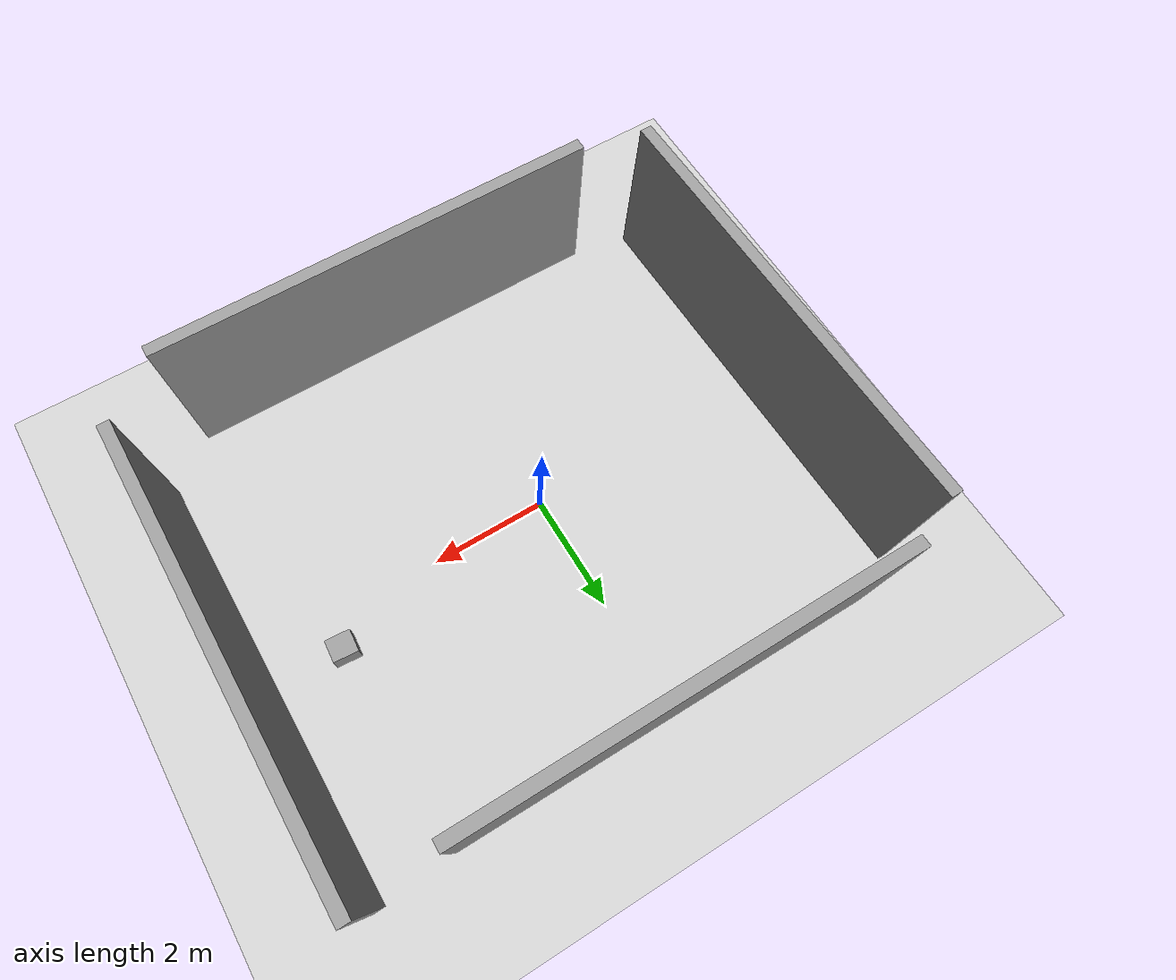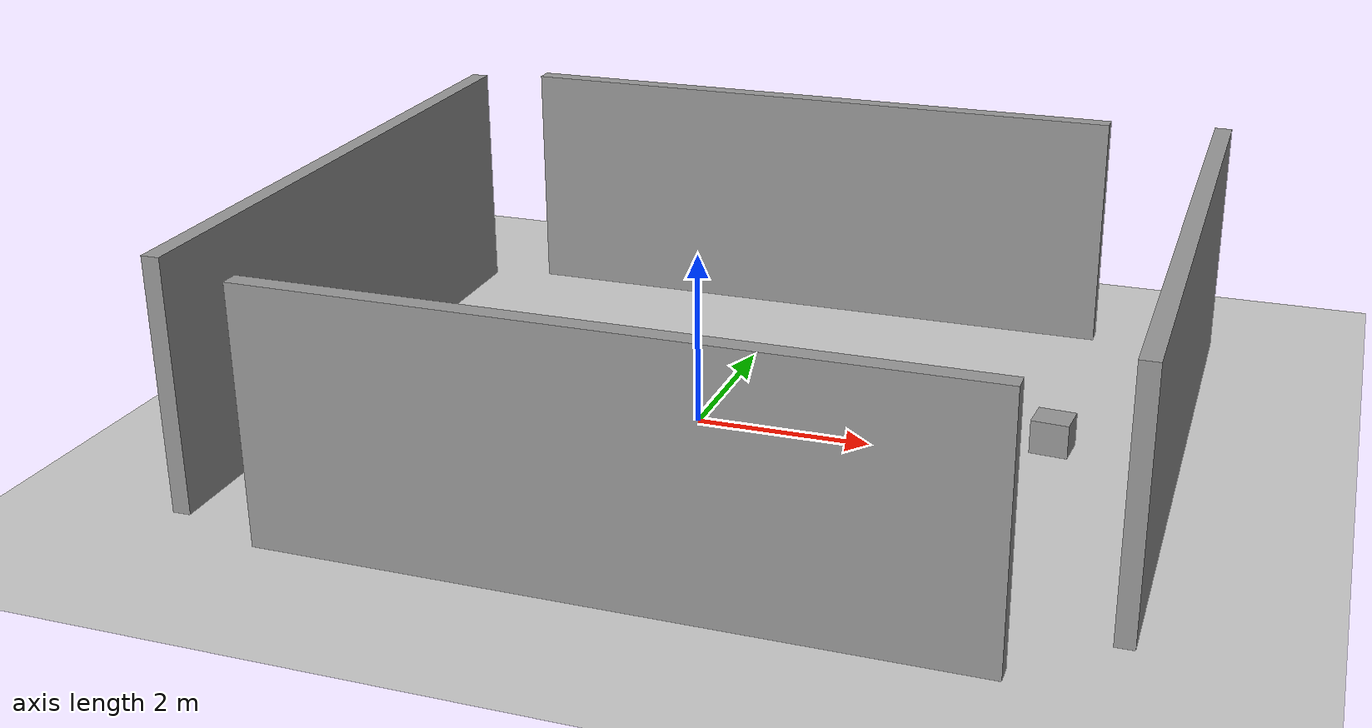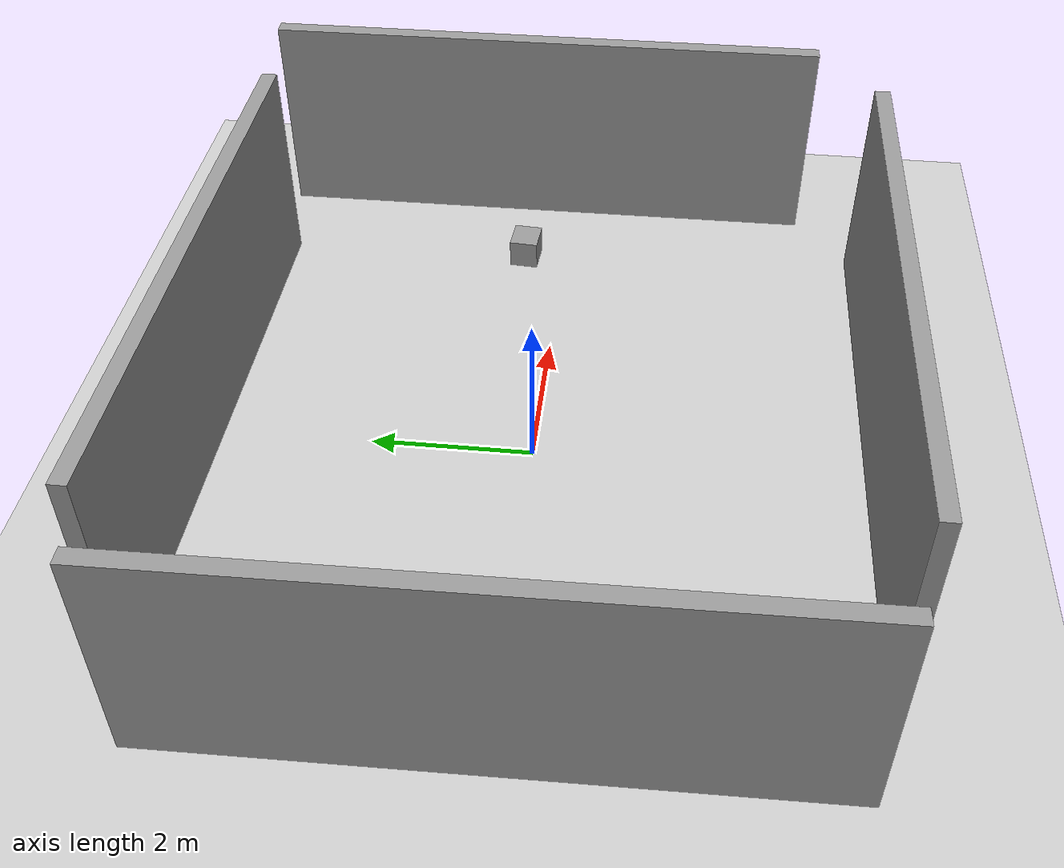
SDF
<sdf version="1.6">
 <world name="default">
  <light name="sun" type="directional">
   <pose>0 0 10 0 -0 0</pose>
   <diffuse>0.8 0.8 0.8 1</diffuse>
   <specular>0.1 0.1 0.1 1</specular>
   <attenuation>
    <range>1000</range>
    <constant>0.9</constant>
    <linear>0.01</linear>
    <quadratic>0.001</quadratic>
   </attenuation>
   <direction>-0.5 0.5 -1</direction>
  </light>
  <model name="ground_plane">
   <static>1</static>
   <link name="link">
    <collision name="collision">
     <geometry><plane><normal>0 0 1</normal><size>100 100</size></plane></geometry>
     <surface><friction><ode><mu>100</mu><mu2>50</mu2></ode></friction></surface>
    </collision>
    <visual name="visual">
     <cast_shadows>0</cast_shadows>
     <geometry><plane><normal>0 0 1</normal><size>100 100</size></plane></geometry>
     <material>
      <script><uri>file://media/materials/scripts/gazebo.material</uri><name>Gazebo/Grey</name></script>
     </material>
    </visual>
   </link>
  </model>
  <gravity>0 0 -9.8</gravity>
  <magnetic_field>6e-06 2.3e-05 -4.2e-05</magnetic_field>
  <atmosphere type="adiabatic"/>
  <physics name="default_physics" default="0" type="ode">
   <max_step_size>0.001</max_step_size>
   <real_time_factor>1</real_time_factor>
   <real_time_update_rate>1000</real_time_update_rate>
  </physics>
  <scene><ambient>0.4 0.4 0.4 1</ambient><background>0.7 0.7 0.7 1</background><shadows>1</shadows></scene>
  <spherical_coordinates>
   <surface_model>EARTH_WGS84</surface_model>
   <latitude_deg>0</latitude_deg>
   <longitude_deg>0</longitude_deg>
   <elevation>0</elevation>
   <heading_deg>0</heading_deg>
  </spherical_coordinates>
  <model name="unit_box_0_clone">
   <pose>3.94102 0.547559 0.194415 0 -0 1.4997</pose>
   <link name="link">
    <inertial>
     <mass>1</mass>
     <inertia>
      <ixx>0.166667</ixx>
      <ixy>0</ixy>
      <ixz>0</ixz>
      <iyy>0.166667</iyy>
      <iyz>0</iyz>
      <izz>0.166667</izz>
     </inertia>
    </inertial>
    <collision name="collision">
     <geometry><box><size>0.382969 0.428069 0.388831</size></box></geometry>
    </collision>
    <visual name="visual">
     <geometry><box><size>0.382969 0.428069 0.388831</size></box></geometry>
     <material>
      <script><name>Gazebo/Grey</name><uri>file://media/materials/scripts/gazebo.material</uri></script>
     </material>
    </visual>
   </link>
  </model>
  <light name="sun_0" type="directional">
   <pose>7.21357 -7.92239 10 0 -0 0</pose>
   <diffuse>0.8 0.8 0.8 1</diffuse>
   <specular>0.1 0.1 0.1 1</specular>
   <attenuation>
    <range>1000</range>
    <constant>0.9</constant>
    <linear>0.01</linear>
    <quadratic>0.001</quadratic>
   </attenuation>
   <direction>-0.5 0.5 -1</direction>
  </light>
  <model name="grey_wall">
   <static>1</static>
   <link name="link">
    <pose>0 0 1.4 0 -0 0</pose>
    <collision name="collision"><geometry><box><size>7.5 0.2 2.8</size></box></geometry></collision>
    <visual name="visual">
     <cast_shadows>0</cast_shadows>
     <geometry><box><size>7.5 0.2 2.8</size></box></geometry>
     <material>
      <script>
       <uri>model://grey_wall/materials/scripts</uri>
       <uri>model://grey_wall/materials/textures</uri>
       <name>vrc/grey_wall</name>
      </script>
     </material>
    </visual>
   </link>
   <pose>0.144098 3.95899 0 0 -0 0</pose>
  </model>
  <model name="grey_wall_1">
   <static>1</static>
   <link name="link">
    <pose>0 0 1.4 0 -0 0</pose>
    <collision name="collision"><geometry><box><size>7.5 0.2 2.8</size></box></geometry></collision>
    <visual name="visual">
     <cast_shadows>0</cast_shadows>
     <geometry><box><size>7.5 0.2 2.8</size></box></geometry>
     <material>
      <script>
       <uri>model://grey_wall/materials/scripts</uri>
       <uri>model://grey_wall/materials/textures</uri>
       <name>vrc/grey_wall</name>
      </script>
     </material>
    </visual>
   </link>
   <pose>5.23453 0.415017 0 0 0 -1.56519</pose>
  </model>
  <model name="grey_wall_3">
   <static>1</static>
   <link name="link">
    <pose>0 0 1.4 0 -0 0</pose>
    <collision name="collision"><geometry><box><size>7.5 0.2 2.8</size></box></geometry></collision>
    <visual name="visual">
     <cast_shadows>0</cast_shadows>
     <geometry><box><size>7.5 0.2 2.8</size></box></geometry>
     <material>
      <script>
       <uri>model://grey_wall/materials/scripts</uri>
       <uri>model://grey_wall/materials/textures</uri>
       <name>vrc/grey_wall</name>
      </script>
     </material>
    </visual>
   </link>
   <pose>0.56736 -4.10889 0 0 -0 0</pose>
  </model>
  <model name="grey_wall_4">
   <static>1</static>
   <link name="link">
    <pose>0 0 1.4 0 -0 0</pose>
    <collision name="collision"><geometry><box><size>7.5 0.2 2.8</size></box></geometry></collision>
    <visual name="visual">
     <cast_shadows>0</cast_shadows>
     <geometry><box><size>7.5 0.2 2.8</size></box></geometry>
     <material>
      <script>
       <uri>model://grey_wall/materials/scripts</uri>
       <uri>model://grey_wall/materials/textures</uri>
       <name>vrc/grey_wall</name>
      </script>
     </material>
    </visual>
   </link>
   <pose>-4.32974 -0.08598 0 0 -0 1.59071</pose>
  </model>
 </world>
</sdf>
